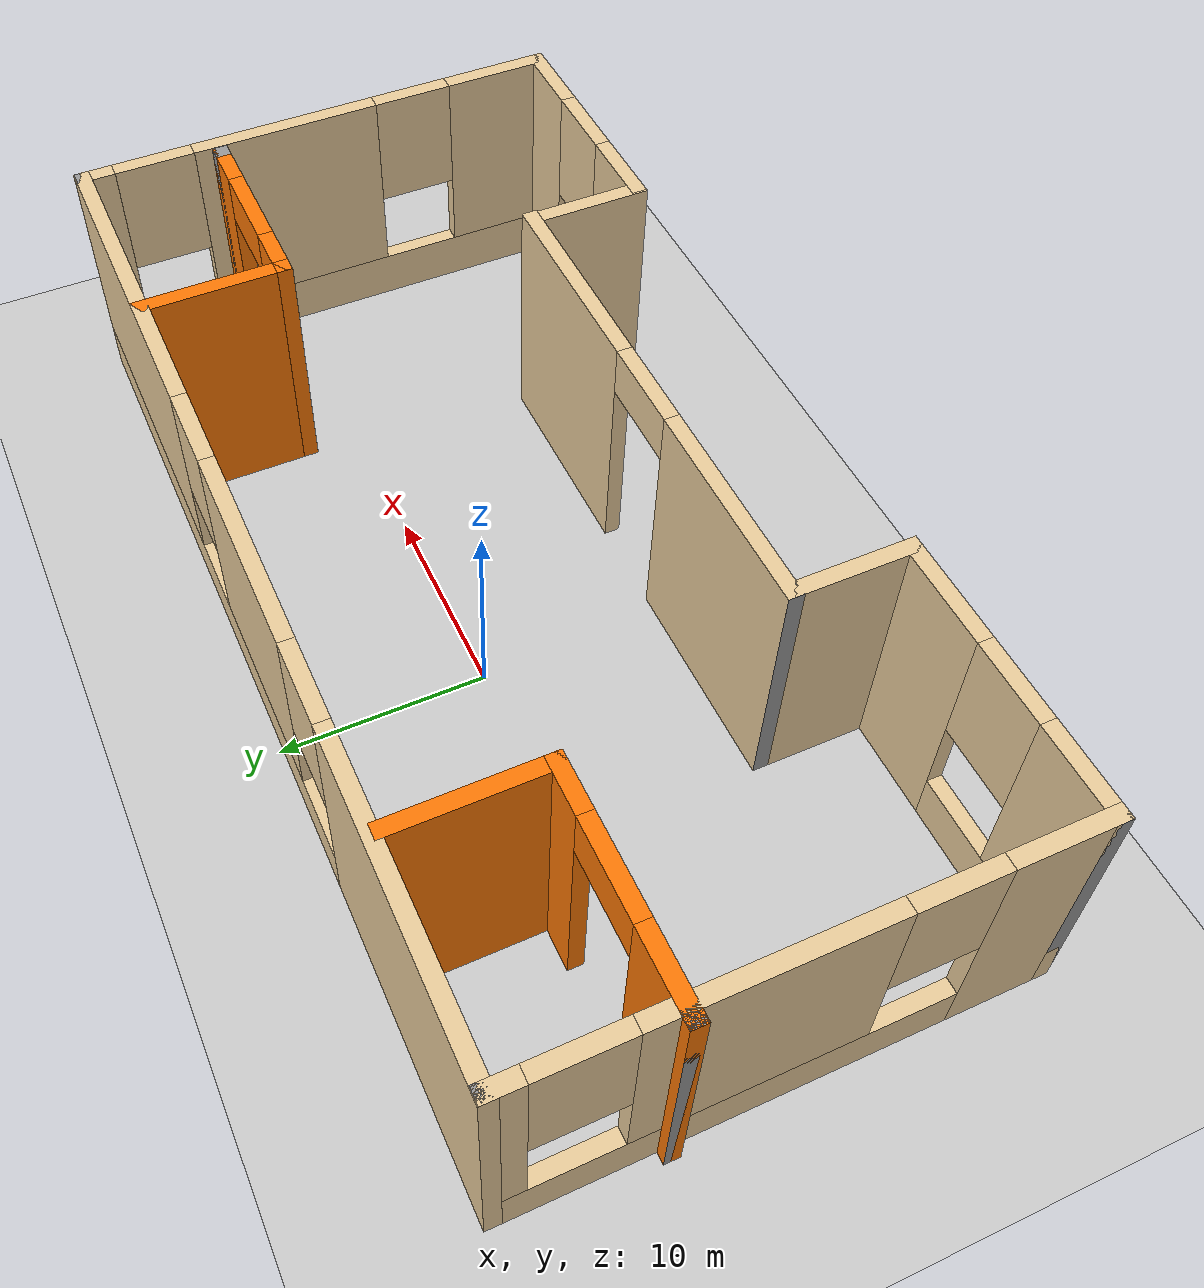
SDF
<sdf version="1.6">
 <world name="default">
  <model name="ground_plane">
   <static>1</static>
   <link name="link">
    <collision name="collision">
     <geometry><plane><normal>0 0 1</normal><size>100 100</size></plane></geometry>
     <surface><friction><ode><mu>100</mu><mu2>50</mu2></ode></friction></surface>
    </collision>
    <visual name="visual">
     <cast_shadows>0</cast_shadows>
     <geometry><plane><normal>0 0 1</normal><size>100 100</size></plane></geometry>
     <material>
      <script><uri>file://media/materials/scripts/gazebo.material</uri><name>Gazebo/Grey</name></script>
     </material>
    </visual>
   </link>
  </model>
  <model name="Building_0">
   <pose>2.0514 -2.65278 0 0 -0 0</pose>
   <link name="Wall_10">
    <collision name="Wall_10_Collision">
     <geometry><box><size>0.75 0.75 12.5</size></box></geometry>
     <pose>0 0 6.25 0 -0 0</pose>
    </collision>
    <visual name="Wall_10_Visual">
     <pose>0 0 6.25 0 -0 0</pose>
     <geometry><box><size>0.75 0.75 12.5</size></box></geometry>
     <material>
      <script><uri>file://media/materials/scripts/gazebo.material</uri><name>Gazebo/Grey</name></script>
      <ambient>1 1 1 1</ambient>
     </material>
     <meta><layer>0</layer></meta>
    </visual>
    <pose>-24.3625 12.0818 0 0 -0 0</pose>
   </link>
   <link name="Wall_12">
    <pose>0.262435 12.1106 0 0 -0 0</pose>
    <visual name="Wall_12_Visual_0">
     <pose>-17.3243 0 6.25 0 -0 0</pose>
     <geometry><box><size>15.3514 0.75 12.5</size></box></geometry>
     <material>
      <script><uri>file://media/materials/scripts/gazebo.material</uri><name>Gazebo/Grey</name></script>
      <ambient>0.921569 0.807843 0.615686 1</ambient>
     </material>
     <meta><layer>0</layer></meta>
    </visual>
    <collision name="Wall_12_Collision_0">
     <geometry><box><size>15.3514 0.75 12.5</size></box></geometry>
     <pose>-17.3243 0 6.25 0 -0 0</pose>
    </collision>
    <visual name="Wall_12_Visual_1">
     <pose>7.6757 0 1.25 0 -0 0</pose>
     <geometry><box><size>34.6486 0.75 2.5</size></box></geometry>
     <material>
      <script><uri>file://media/materials/scripts/gazebo.material</uri><name>Gazebo/Grey</name></script>
      <ambient>0.921569 0.807843 0.615686 1</ambient>
     </material>
     <meta><layer>0</layer></meta>
    </visual>
    <collision name="Wall_12_Collision_1">
     <geometry><box><size>34.6486 0.75 2.5</size></box></geometry>
     <pose>7.6757 0 1.25 0 -0 0</pose>
    </collision>
    <visual name="Wall_12_Visual_2">
     <pose>-0.56628 0 7.5 0 -0 0</pose>
     <geometry><box><size>10.1646 0.75 10</size></box></geometry>
     <material>
      <script><uri>file://media/materials/scripts/gazebo.material</uri><name>Gazebo/Grey</name></script>
      <ambient>0.921569 0.807843 0.615686 1</ambient>
     </material>
     <meta><layer>0</layer></meta>
    </visual>
    <collision name="Wall_12_Collision_2">
     <geometry><box><size>10.1646 0.75 10</size></box></geometry>
     <pose>-0.56628 0 7.5 0 -0 0</pose>
    </collision>
    <visual name="Wall_12_Visual_3">
     <pose>16.758 0 7.5 0 -0 0</pose>
     <geometry><box><size>16.484 0.75 10</size></box></geometry>
     <material>
      <script><uri>file://media/materials/scripts/gazebo.material</uri><name>Gazebo/Grey</name></script>
      <ambient>0.921569 0.807843 0.615686 1</ambient>
     </material>
     <meta><layer>0</layer></meta>
    </visual>
    <collision name="Wall_12_Collision_3">
     <geometry><box><size>16.484 0.75 10</size></box></geometry>
     <pose>16.758 0 7.5 0 -0 0</pose>
    </collision>
    <visual name="Wall_12_Visual_4">
     <pose>-7.6486 0 9.5 0 -0 0</pose>
     <geometry><box><size>4 0.75 6</size></box></geometry>
     <material>
      <script><uri>file://media/materials/scripts/gazebo.material</uri><name>Gazebo/Grey</name></script>
      <ambient>0.921569 0.807843 0.615686 1</ambient>
     </material>
     <meta><layer>0</layer></meta>
    </visual>
    <collision name="Wall_12_Collision_4">
     <geometry><box><size>4 0.75 6</size></box></geometry>
     <pose>-7.6486 0 9.5 0 -0 0</pose>
    </collision>
    <visual name="Wall_12_Visual_5">
     <pose>6.516 0 9.5 0 -0 0</pose>
     <geometry><box><size>4 0.75 6</size></box></geometry>
     <material>
      <script><uri>file://media/materials/scripts/gazebo.material</uri><name>Gazebo/Grey</name></script>
      <ambient>0.921569 0.807843 0.615686 1</ambient>
     </material>
     <meta><layer>0</layer></meta>
    </visual>
    <collision name="Wall_12_Collision_5">
     <geometry><box><size>4 0.75 6</size></box></geometry>
     <pose>6.516 0 9.5 0 -0 0</pose>
    </collision>
   </link>
   <link name="Wall_13">
    <collision name="Wall_13_Collision">
     <geometry><box><size>0.75 0.75 12.5</size></box></geometry>
     <pose>0 0 6.25 0 -0 0</pose>
    </collision>
    <visual name="Wall_13_Visual">
     <pose>0 0 6.25 0 -0 0</pose>
     <geometry><box><size>0.75 0.75 12.5</size></box></geometry>
     <material>
      <script><uri>file://media/materials/scripts/gazebo.material</uri><name>Gazebo/Grey</name></script>
      <ambient>1 1 1 1</ambient>
     </material>
     <meta><layer>0</layer></meta>
    </visual>
    <pose>24.8875 12.0818 0 0 -0 0</pose>
   </link>
   <link name="Wall_14">
    <pose>24.8875 -0.014375 0 0 0 -1.5708</pose>
    <visual name="Wall_14_Visual_0">
     <pose>-11.5449 0 6.25 0 -0 0</pose>
     <geometry><box><size>1.85284 0.75 12.5</size></box></geometry>
     <material>
      <script><uri>file://media/materials/scripts/gazebo.material</uri><name>Gazebo/Grey</name></script>
      <ambient>0.921569 0.807843 0.615686 1</ambient>
     </material>
     <meta><layer>0</layer></meta>
    </visual>
    <collision name="Wall_14_Collision_0">
     <geometry><box><size>1.85284 0.75 12.5</size></box></geometry>
     <pose>-11.5449 0 6.25 0 -0 0</pose>
    </collision>
    <visual name="Wall_14_Visual_1">
     <pose>0.92642 0 1.25 0 -0 0</pose>
     <geometry><box><size>23.0896 0.75 2.5</size></box></geometry>
     <material>
      <script><uri>file://media/materials/scripts/gazebo.material</uri><name>Gazebo/Grey</name></script>
      <ambient>0.921569 0.807843 0.615686 1</ambient>
     </material>
     <meta><layer>0</layer></meta>
    </visual>
    <collision name="Wall_14_Collision_1">
     <geometry><box><size>23.0896 0.75 2.5</size></box></geometry>
     <pose>0.92642 0 1.25 0 -0 0</pose>
    </collision>
    <visual name="Wall_14_Visual_2">
     <pose>-1.83536 0 7.5 0 -0 0</pose>
     <geometry><box><size>9.5661 0.75 10</size></box></geometry>
     <material>
      <script><uri>file://media/materials/scripts/gazebo.material</uri><name>Gazebo/Grey</name></script>
      <ambient>0.921569 0.807843 0.615686 1</ambient>
     </material>
     <meta><layer>0</layer></meta>
    </visual>
    <collision name="Wall_14_Collision_2">
     <geometry><box><size>9.5661 0.75 10</size></box></geometry>
     <pose>-1.83536 0 7.5 0 -0 0</pose>
    </collision>
    <visual name="Wall_14_Visual_3">
     <pose>9.70945 0 7.5 0 -0 0</pose>
     <geometry><box><size>5.52355 0.75 10</size></box></geometry>
     <material>
      <script><uri>file://media/materials/scripts/gazebo.material</uri><name>Gazebo/Grey</name></script>
      <ambient>0.921569 0.807843 0.615686 1</ambient>
     </material>
     <meta><layer>0</layer></meta>
    </visual>
    <collision name="Wall_14_Collision_3">
     <geometry><box><size>5.52355 0.75 10</size></box></geometry>
     <pose>9.70945 0 7.5 0 -0 0</pose>
    </collision>
    <visual name="Wall_14_Visual_4">
     <pose>-8.6184 0 9.5 0 -0 0</pose>
     <geometry><box><size>4 0.75 6</size></box></geometry>
     <material>
      <script><uri>file://media/materials/scripts/gazebo.material</uri><name>Gazebo/Grey</name></script>
      <ambient>0.921569 0.807843 0.615686 1</ambient>
     </material>
     <meta><layer>0</layer></meta>
    </visual>
    <collision name="Wall_14_Collision_4">
     <geometry><box><size>4 0.75 6</size></box></geometry>
     <pose>-8.6184 0 9.5 0 -0 0</pose>
    </collision>
    <visual name="Wall_14_Visual_5">
     <pose>4.94769 0 9.5 0 -0 0</pose>
     <geometry><box><size>4 0.75 6</size></box></geometry>
     <material>
      <script><uri>file://media/materials/scripts/gazebo.material</uri><name>Gazebo/Grey</name></script>
      <ambient>0.921569 0.807843 0.615686 1</ambient>
     </material>
     <meta><layer>0</layer></meta>
    </visual>
    <collision name="Wall_14_Collision_5">
     <geometry><box><size>4 0.75 6</size></box></geometry>
     <pose>4.94769 0 9.5 0 -0 0</pose>
    </collision>
   </link>
   <link name="Wall_15">
    <pose>19.113 -12.1106 0 0 -0 3.14159</pose>
    <visual name="Wall_15_Visual_0">
     <pose>-4.05874 0 6.25 0 -0 0</pose>
     <geometry><box><size>4.18138 0.75 12.5</size></box></geometry>
     <material>
      <script><uri>file://media/materials/scripts/gazebo.material</uri><name>Gazebo/Grey</name></script>
      <ambient>0.921569 0.807843 0.615686 1</ambient>
     </material>
     <meta><layer>0</layer></meta>
    </visual>
    <collision name="Wall_15_Collision_0">
     <geometry><box><size>4.18138 0.75 12.5</size></box></geometry>
     <pose>-4.05874 0 6.25 0 -0 0</pose>
    </collision>
    <visual name="Wall_15_Visual_1">
     <pose>2.09069 0 1.25 0 -0 0</pose>
     <geometry><box><size>8.1175 0.75 2.5</size></box></geometry>
     <material>
      <script><uri>file://media/materials/scripts/gazebo.material</uri><name>Gazebo/Grey</name></script>
      <ambient>0.921569 0.807843 0.615686 1</ambient>
     </material>
     <meta><layer>0</layer></meta>
    </visual>
    <collision name="Wall_15_Collision_1">
     <geometry><box><size>8.1175 0.75 2.5</size></box></geometry>
     <pose>2.09069 0 1.25 0 -0 0</pose>
    </collision>
    <visual name="Wall_15_Visual_2">
     <pose>4.09069 0 7.5 0 -0 0</pose>
     <geometry><box><size>4.11748 0.75 10</size></box></geometry>
     <material>
      <script><uri>file://media/materials/scripts/gazebo.material</uri><name>Gazebo/Grey</name></script>
      <ambient>0.921569 0.807843 0.615686 1</ambient>
     </material>
     <meta><layer>0</layer></meta>
    </visual>
    <collision name="Wall_15_Collision_2">
     <geometry><box><size>4.11748 0.75 10</size></box></geometry>
     <pose>4.09069 0 7.5 0 -0 0</pose>
    </collision>
    <visual name="Wall_15_Visual_3">
     <pose>0.03195 0 9.5 0 -0 0</pose>
     <geometry><box><size>4 0.75 6</size></box></geometry>
     <material>
      <script><uri>file://media/materials/scripts/gazebo.material</uri><name>Gazebo/Grey</name></script>
      <ambient>0.921569 0.807843 0.615686 1</ambient>
     </material>
     <meta><layer>0</layer></meta>
    </visual>
    <collision name="Wall_15_Collision_3">
     <geometry><box><size>4 0.75 6</size></box></geometry>
     <pose>0.03195 0 9.5 0 -0 0</pose>
    </collision>
   </link>
   <link name="Wall_16">
    <collision name="Wall_16_Collision">
     <geometry><box><size>6.25 0.75 12.5</size></box></geometry>
     <pose>0 0 6.25 0 -0 0</pose>
    </collision>
    <visual name="Wall_16_Visual">
     <pose>0 0 6.25 0 -0 0</pose>
     <geometry><box><size>6.25 0.75 12.5</size></box></geometry>
     <material>
      <script><uri>file://media/materials/scripts/gazebo.material</uri><name>Gazebo/Grey</name></script>
      <ambient>0.921569 0.807843 0.615686 1</ambient>
     </material>
     <meta><layer>0</layer></meta>
    </visual>
    <pose>13.238 -9.36065 0 0 -0 1.5708</pose>
   </link>
   <link name="Wall_17">
    <pose>1.11301 -6.6106 0 0 -0 3.14159</pose>
    <visual name="Wall_17_Visual_0">
     <pose>-7.49825 0 6.25 0 -0 0</pose>
     <geometry><box><size>10.2047 0.75 12.5</size></box></geometry>
     <material>
      <script><uri>file://media/materials/scripts/gazebo.material</uri><name>Gazebo/Grey</name></script>
      <ambient>0.921569 0.807843 0.615686 1</ambient>
     </material>
     <meta><layer>0</layer></meta>
    </visual>
    <collision name="Wall_17_Collision_0">
     <geometry><box><size>10.2047 0.75 12.5</size></box></geometry>
     <pose>-7.49825 0 6.25 0 -0 0</pose>
    </collision>
    <visual name="Wall_17_Visual_1">
     <pose>7.3523 0 6.25 0 -0 0</pose>
     <geometry><box><size>10.4965 0.75 12.5</size></box></geometry>
     <material>
      <script><uri>file://media/materials/scripts/gazebo.material</uri><name>Gazebo/Grey</name></script>
      <ambient>0.921569 0.807843 0.615686 1</ambient>
     </material>
     <meta><layer>0</layer></meta>
    </visual>
    <collision name="Wall_17_Collision_1">
     <geometry><box><size>10.4965 0.75 12.5</size></box></geometry>
     <pose>7.3523 0 6.25 0 -0 0</pose>
    </collision>
    <visual name="Wall_17_Visual_2">
     <pose>-0.145915 0 11.25 0 -0 0</pose>
     <geometry><box><size>4.5 0.75 2.5</size></box></geometry>
     <material>
      <script><uri>file://media/materials/scripts/gazebo.material</uri><name>Gazebo/Grey</name></script>
      <ambient>0.921569 0.807843 0.615686 1</ambient>
     </material>
     <meta><layer>0</layer></meta>
    </visual>
    <collision name="Wall_17_Collision_2">
     <geometry><box><size>4.5 0.75 2.5</size></box></geometry>
     <pose>-0.145915 0 11.25 0 -0 0</pose>
    </collision>
   </link>
   <link name="Wall_18">
    <collision name="Wall_18_Collision">
     <geometry><box><size>0.75 0.75 12.5</size></box></geometry>
     <pose>0 0 6.25 0 -0 0</pose>
    </collision>
    <visual name="Wall_18_Visual">
     <pose>0 0 6.25 0 -0 0</pose>
     <geometry><box><size>0.75 0.75 12.5</size></box></geometry>
     <material>
      <script><uri>file://media/materials/scripts/gazebo.material</uri><name>Gazebo/Grey</name></script>
      <ambient>1 1 1 1</ambient>
     </material>
     <meta><layer>0</layer></meta>
    </visual>
    <pose>-11.1126 -6.6106 0 0 -0 0</pose>
   </link>
   <link name="Wall_20">
    <collision name="Wall_20_Collision">
     <geometry><box><size>6.25 0.75 12.5</size></box></geometry>
     <pose>0 0 6.25 0 -0 0</pose>
    </collision>
    <visual name="Wall_20_Visual">
     <pose>0 0 6.25 0 -0 0</pose>
     <geometry><box><size>6.25 0.75 12.5</size></box></geometry>
     <material>
      <script><uri>file://media/materials/scripts/gazebo.material</uri><name>Gazebo/Grey</name></script>
      <ambient>0.921569 0.807843 0.615686 1</ambient>
     </material>
     <meta><layer>0</layer></meta>
    </visual>
    <pose>-11.1126 -9.36065 0 0 0 -1.5708</pose>
   </link>
   <link name="Wall_21">
    <pose>-17.7375 -12.1106 0 0 0 -3.14159</pose>
    <visual name="Wall_21_Visual_0">
     <pose>-4.28917 0 6.25 0 -0 0</pose>
     <geometry><box><size>5.42165 0.75 12.5</size></box></geometry>
     <material>
      <script><uri>file://media/materials/scripts/gazebo.material</uri><name>Gazebo/Grey</name></script>
      <ambient>0.921569 0.807843 0.615686 1</ambient>
     </material>
     <meta><layer>0</layer></meta>
    </visual>
    <collision name="Wall_21_Collision_0">
     <geometry><box><size>5.42165 0.75 12.5</size></box></geometry>
     <pose>-4.28917 0 6.25 0 -0 0</pose>
    </collision>
    <visual name="Wall_21_Visual_1">
     <pose>2.71083 0 1.25 0 -0 0</pose>
     <geometry><box><size>8.57835 0.75 2.5</size></box></geometry>
     <material>
      <script><uri>file://media/materials/scripts/gazebo.material</uri><name>Gazebo/Grey</name></script>
      <ambient>0.921569 0.807843 0.615686 1</ambient>
     </material>
     <meta><layer>0</layer></meta>
    </visual>
    <collision name="Wall_21_Collision_1">
     <geometry><box><size>8.57835 0.75 2.5</size></box></geometry>
     <pose>2.71083 0 1.25 0 -0 0</pose>
    </collision>
    <visual name="Wall_21_Visual_2">
     <pose>4.71083 0 7.5 0 -0 0</pose>
     <geometry><box><size>4.57834 0.75 10</size></box></geometry>
     <material>
      <script><uri>file://media/materials/scripts/gazebo.material</uri><name>Gazebo/Grey</name></script>
      <ambient>0.921569 0.807843 0.615686 1</ambient>
     </material>
     <meta><layer>0</layer></meta>
    </visual>
    <collision name="Wall_21_Collision_2">
     <geometry><box><size>4.57834 0.75 10</size></box></geometry>
     <pose>4.71083 0 7.5 0 -0 0</pose>
    </collision>
    <visual name="Wall_21_Visual_3">
     <pose>0.42166 0 9.5 0 -0 0</pose>
     <geometry><box><size>4 0.75 6</size></box></geometry>
     <material>
      <script><uri>file://media/materials/scripts/gazebo.material</uri><name>Gazebo/Grey</name></script>
      <ambient>0.921569 0.807843 0.615686 1</ambient>
     </material>
     <meta><layer>0</layer></meta>
    </visual>
    <collision name="Wall_21_Collision_3">
     <geometry><box><size>4 0.75 6</size></box></geometry>
     <pose>0.42166 0 9.5 0 -0 0</pose>
    </collision>
   </link>
   <link name="Wall_22">
    <collision name="Wall_22_Collision">
     <geometry><box><size>0.75 0.75 12.5</size></box></geometry>
     <pose>0 0 6.25 0 -0 0</pose>
    </collision>
    <visual name="Wall_22_Visual">
     <pose>0 0 6.25 0 -0 0</pose>
     <geometry><box><size>0.75 0.75 12.5</size></box></geometry>
     <material>
      <script><uri>file://media/materials/scripts/gazebo.material</uri><name>Gazebo/Grey</name></script>
      <ambient>1 1 1 1</ambient>
     </material>
     <meta><layer>0</layer></meta>
    </visual>
    <pose>-24.3625 -12.1106 0 0 -0 0</pose>
   </link>
   <link name="Wall_24">
    <collision name="Wall_24_Collision">
     <geometry><box><size>7.5 0.75 12.5</size></box></geometry>
     <pose>0 0 6.25 0 -0 0</pose>
    </collision>
    <visual name="Wall_24_Visual">
     <pose>0 0 6.25 0 -0 0</pose>
     <geometry><box><size>7.5 0.75 12.5</size></box></geometry>
     <material>
      <script><uri>file://media/materials/scripts/gazebo.material</uri><name>Gazebo/Grey</name></script>
      <ambient>0.996078 0.47451 0.0196078 1</ambient>
     </material>
     <meta><layer>0</layer></meta>
    </visual>
    <pose>-14.3874 8.3224 0 0 -0 1.5708</pose>
   </link>
   <link name="Wall_25">
    <collision name="Wall_25_Collision">
     <geometry><box><size>0.75 0.75 12.5</size></box></geometry>
     <pose>0 0 6.25 0 -0 0</pose>
    </collision>
    <visual name="Wall_25_Visual">
     <pose>0 0 6.25 0 -0 0</pose>
     <geometry><box><size>0.75 0.75 12.5</size></box></geometry>
     <material>
      <script><uri>file://media/materials/scripts/gazebo.material</uri><name>Gazebo/Grey</name></script>
      <ambient>1 1 1 1</ambient>
     </material>
     <meta><layer>0</layer></meta>
    </visual>
    <pose>-14.3874 11.6974 0 0 -0 0</pose>
   </link>
   <link name="Wall_28">
    <collision name="Wall_28_Collision">
     <geometry><box><size>0.75 0.75 12.5</size></box></geometry>
     <pose>0 0 6.25 0 -0 0</pose>
    </collision>
    <visual name="Wall_28_Visual">
     <pose>0 0 6.25 0 -0 0</pose>
     <geometry><box><size>0.75 0.75 12.5</size></box></geometry>
     <material>
      <script><uri>file://media/materials/scripts/gazebo.material</uri><name>Gazebo/Grey</name></script>
      <ambient>1 1 1 1</ambient>
     </material>
     <meta><layer>0</layer></meta>
    </visual>
    <pose>-24.8875 4.94741 0 0 -0 0</pose>
   </link>
   <link name="Wall_29">
    <collision name="Wall_29_Collision">
     <geometry><box><size>0.75 0.75 12.5</size></box></geometry>
     <pose>0 0 6.25 0 -0 0</pose>
    </collision>
    <visual name="Wall_29_Visual">
     <pose>0 0 6.25 0 -0 0</pose>
     <geometry><box><size>0.75 0.75 12.5</size></box></geometry>
     <material>
      <script><uri>file://media/materials/scripts/gazebo.material</uri><name>Gazebo/Grey</name></script>
      <ambient>1 1 1 1</ambient>
     </material>
     <meta><layer>0</layer></meta>
    </visual>
    <pose>-24.8875 4.94741 0 0 -0 0</pose>
   </link>
   <link name="Wall_33">
    <pose>-19.6375 4.94741 0 0 -0 3.14159</pose>
    <visual name="Wall_33_Visual_0">
     <pose>-4.2776 0 6.25 0 -0 0</pose>
     <geometry><box><size>2.6948 0.75 12.5</size></box></geometry>
     <material>
      <script><uri>file://media/materials/scripts/gazebo.material</uri><name>Gazebo/Grey</name></script>
      <ambient>0.996078 0.47451 0.0196078 1</ambient>
     </material>
     <meta><layer>0</layer></meta>
    </visual>
    <collision name="Wall_33_Collision_0">
     <geometry><box><size>2.6948 0.75 12.5</size></box></geometry>
     <pose>-4.2776 0 6.25 0 -0 0</pose>
    </collision>
    <visual name="Wall_33_Visual_1">
     <pose>3.5974 0 6.25 0 -0 0</pose>
     <geometry><box><size>4.0552 0.75 12.5</size></box></geometry>
     <material>
      <script><uri>file://media/materials/scripts/gazebo.material</uri><name>Gazebo/Grey</name></script>
      <ambient>0.996078 0.47451 0.0196078 1</ambient>
     </material>
     <meta><layer>0</layer></meta>
    </visual>
    <collision name="Wall_33_Collision_1">
     <geometry><box><size>4.0552 0.75 12.5</size></box></geometry>
     <pose>3.5974 0 6.25 0 -0 0</pose>
    </collision>
    <visual name="Wall_33_Visual_2">
     <pose>-0.680205 0 11.25 0 -0 0</pose>
     <geometry><box><size>4.5 0.75 2.5</size></box></geometry>
     <material>
      <script><uri>file://media/materials/scripts/gazebo.material</uri><name>Gazebo/Grey</name></script>
      <ambient>0.996078 0.47451 0.0196078 1</ambient>
     </material>
     <meta><layer>0</layer></meta>
    </visual>
    <collision name="Wall_33_Collision_2">
     <geometry><box><size>4.5 0.75 2.5</size></box></geometry>
     <pose>-0.680205 0 11.25 0 -0 0</pose>
    </collision>
   </link>
   <link name="Wall_35">
    <collision name="Wall_35_Collision">
     <geometry><box><size>7.5 0.75 12.5</size></box></geometry>
     <pose>0 0 6.25 0 -0 0</pose>
    </collision>
    <visual name="Wall_35_Visual">
     <pose>0 0 6.25 0 -0 0</pose>
     <geometry><box><size>7.5 0.75 12.5</size></box></geometry>
     <material>
      <script><uri>file://media/materials/scripts/gazebo.material</uri><name>Gazebo/Grey</name></script>
      <ambient>0.996078 0.47451 0.0196078 1</ambient>
     </material>
     <meta><layer>0</layer></meta>
    </visual>
    <pose>14.8484 8.71825 0 0 -0 1.5708</pose>
   </link>
   <link name="Wall_40">
    <collision name="Wall_40_Collision">
     <geometry><box><size>0.75 0.75 12.5</size></box></geometry>
     <pose>0 0 6.25 0 -0 0</pose>
    </collision>
    <visual name="Wall_40_Visual">
     <pose>0 0 6.25 0 -0 0</pose>
     <geometry><box><size>0.75 0.75 12.5</size></box></geometry>
     <material>
      <script><uri>file://media/materials/scripts/gazebo.material</uri><name>Gazebo/Grey</name></script>
      <ambient>1 1 1 1</ambient>
     </material>
     <meta><layer>0</layer></meta>
    </visual>
    <pose>24.0984 5.34325 0 0 -0 0</pose>
   </link>
   <link name="Wall_42">
    <pose>19.4734 5.34325 0 0 -0 0</pose>
    <visual name="Wall_42_Visual_0">
     <pose>-3.5552 0 6.25 0 -0 0</pose>
     <geometry><box><size>2.88958 0.75 12.5</size></box></geometry>
     <material>
      <script><uri>file://media/materials/scripts/gazebo.material</uri><name>Gazebo/Grey</name></script>
      <ambient>0.996078 0.47451 0.0196078 1</ambient>
     </material>
     <meta><layer>0</layer></meta>
    </visual>
    <collision name="Wall_42_Collision_0">
     <geometry><box><size>2.88958 0.75 12.5</size></box></geometry>
     <pose>-3.5552 0 6.25 0 -0 0</pose>
    </collision>
    <visual name="Wall_42_Visual_1">
     <pose>3.6948 0 6.25 0 -0 0</pose>
     <geometry><box><size>2.61042 0.75 12.5</size></box></geometry>
     <material>
      <script><uri>file://media/materials/scripts/gazebo.material</uri><name>Gazebo/Grey</name></script>
      <ambient>0.996078 0.47451 0.0196078 1</ambient>
     </material>
     <meta><layer>0</layer></meta>
    </visual>
    <collision name="Wall_42_Collision_1">
     <geometry><box><size>2.61042 0.75 12.5</size></box></geometry>
     <pose>3.6948 0 6.25 0 -0 0</pose>
    </collision>
    <visual name="Wall_42_Visual_2">
     <pose>0.139585 0 11.25 0 -0 0</pose>
     <geometry><box><size>4.5 0.75 2.5</size></box></geometry>
     <material>
      <script><uri>file://media/materials/scripts/gazebo.material</uri><name>Gazebo/Grey</name></script>
      <ambient>0.996078 0.47451 0.0196078 1</ambient>
     </material>
     <meta><layer>0</layer></meta>
    </visual>
    <collision name="Wall_42_Collision_2">
     <geometry><box><size>4.5 0.75 2.5</size></box></geometry>
     <pose>0.139585 0 11.25 0 -0 0</pose>
    </collision>
   </link>
   <link name="Wall_9">
    <pose>-24.3625 -0.014375 0 0 -0 1.5708</pose>
    <visual name="Wall_9_Visual_0">
     <pose>-10.0087 0 6.25 0 -0 0</pose>
     <geometry><box><size>4.92506 0.75 12.5</size></box></geometry>
     <material>
      <script><uri>file://media/materials/scripts/gazebo.material</uri><name>Gazebo/Grey</name></script>
      <ambient>0.921569 0.807843 0.615686 1</ambient>
     </material>
     <meta><layer>0</layer></meta>
    </visual>
    <collision name="Wall_9_Collision_0">
     <geometry><box><size>4.92506 0.75 12.5</size></box></geometry>
     <pose>-10.0087 0 6.25 0 -0 0</pose>
    </collision>
    <visual name="Wall_9_Visual_1">
     <pose>2.46252 0 1.25 0 -0 0</pose>
     <geometry><box><size>20.0175 0.75 2.5</size></box></geometry>
     <material>
      <script><uri>file://media/materials/scripts/gazebo.material</uri><name>Gazebo/Grey</name></script>
      <ambient>0.921569 0.807843 0.615686 1</ambient>
     </material>
     <meta><layer>0</layer></meta>
    </visual>
    <collision name="Wall_9_Collision_1">
     <geometry><box><size>20.0175 0.75 2.5</size></box></geometry>
     <pose>2.46252 0 1.25 0 -0 0</pose>
    </collision>
    <visual name="Wall_9_Visual_2">
     <pose>1.60261 0 7.5 0 -0 0</pose>
     <geometry><box><size>10.2976 0.75 10</size></box></geometry>
     <material>
      <script><uri>file://media/materials/scripts/gazebo.material</uri><name>Gazebo/Grey</name></script>
      <ambient>0.921569 0.807843 0.615686 1</ambient>
     </material>
     <meta><layer>0</layer></meta>
    </visual>
    <collision name="Wall_9_Collision_2">
     <geometry><box><size>10.2976 0.75 10</size></box></geometry>
     <pose>1.60261 0 7.5 0 -0 0</pose>
    </collision>
    <visual name="Wall_9_Visual_3">
     <pose>11.6113 0 7.5 0 -0 0</pose>
     <geometry><box><size>1.71984 0.75 10</size></box></geometry>
     <material>
      <script><uri>file://media/materials/scripts/gazebo.material</uri><name>Gazebo/Grey</name></script>
      <ambient>0.921569 0.807843 0.615686 1</ambient>
     </material>
     <meta><layer>0</layer></meta>
    </visual>
    <collision name="Wall_9_Collision_3">
     <geometry><box><size>1.71984 0.75 10</size></box></geometry>
     <pose>11.6113 0 7.5 0 -0 0</pose>
    </collision>
    <visual name="Wall_9_Visual_4">
     <pose>-5.5462 0 9.5 0 -0 0</pose>
     <geometry><box><size>4 0.75 6</size></box></geometry>
     <material>
      <script><uri>file://media/materials/scripts/gazebo.material</uri><name>Gazebo/Grey</name></script>
      <ambient>0.921569 0.807843 0.615686 1</ambient>
     </material>
     <meta><layer>0</layer></meta>
    </visual>
    <collision name="Wall_9_Collision_4">
     <geometry><box><size>4 0.75 6</size></box></geometry>
     <pose>-5.5462 0 9.5 0 -0 0</pose>
    </collision>
    <visual name="Wall_9_Visual_5">
     <pose>8.7514 0 9.5 0 -0 0</pose>
     <geometry><box><size>4 0.75 6</size></box></geometry>
     <material>
      <script><uri>file://media/materials/scripts/gazebo.material</uri><name>Gazebo/Grey</name></script>
      <ambient>0.921569 0.807843 0.615686 1</ambient>
     </material>
     <meta><layer>0</layer></meta>
    </visual>
    <collision name="Wall_9_Collision_5">
     <geometry><box><size>4 0.75 6</size></box></geometry>
     <pose>8.7514 0 9.5 0 -0 0</pose>
    </collision>
   </link>
   <static>1</static>
  </model>
 </world>
</sdf>
